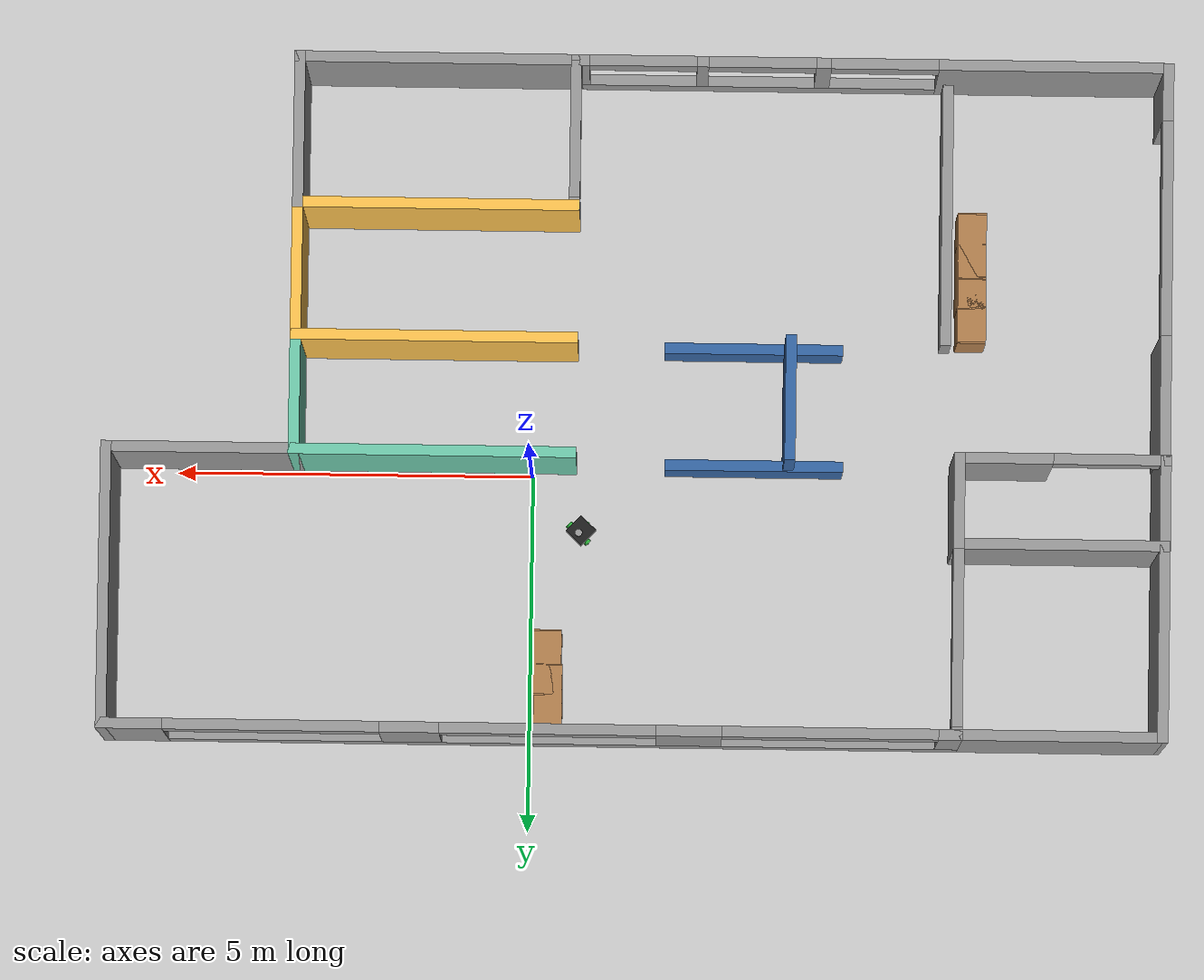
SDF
<sdf version="1.7">
 <world name="default">
  <light name="sun" type="directional">
   <pose>0 0 10 0 -0 0</pose>
   <diffuse>0.8 0.8 0.8 1</diffuse>
   <specular>0.2 0.2 0.2 1</specular>
   <attenuation>
    <range>1000</range>
    <constant>0.9</constant>
    <linear>0.01</linear>
    <quadratic>0.001</quadratic>
   </attenuation>
   <direction>-0.5 0.1 -0.9</direction>
   <spot><inner_angle>0</inner_angle><outer_angle>0</outer_angle><falloff>0</falloff></spot>
  </light>
  <model name="ground_plane">
   <static>1</static>
   <link name="link">
    <collision name="collision">
     <geometry><plane><normal>0 0 1</normal><size>100 100</size></plane></geometry>
     <surface>
      <contact><collide_bitmask>65535</collide_bitmask></contact>
      <friction><ode><mu>100</mu><mu2>50</mu2></ode></friction>
     </surface>
    </collision>
    <visual name="visual">
     <cast_shadows>0</cast_shadows>
     <geometry><plane><normal>0 0 1</normal><size>100 100</size></plane></geometry>
     <material>
      <script><uri>file://media/materials/scripts/gazebo.material</uri><name>Gazebo/Grey</name></script>
     </material>
    </visual>
   </link>
  </model>
  <gravity>0 0 -9.8</gravity>
  <magnetic_field>6e-06 2.3e-05 -4.2e-05</magnetic_field>
  <atmosphere type="adiabatic"/>
  <physics type="ode">
   <max_step_size>0.001</max_step_size>
   <real_time_factor>1</real_time_factor>
   <real_time_update_rate>1000</real_time_update_rate>
  </physics>
  <scene><ambient>0.4 0.4 0.4 1</ambient><background>0.7 0.7 0.7 1</background><shadows>1</shadows></scene>
  <spherical_coordinates>
   <surface_model>EARTH_WGS84</surface_model>
   <latitude_deg>0</latitude_deg>
   <longitude_deg>0</longitude_deg>
   <elevation>0</elevation>
   <heading_deg>0</heading_deg>
  </spherical_coordinates>
  <model name="fablab_view">
   <pose>-1.45693 -0.95337 0 0 -0 0</pose>
   <link name="Wall_11">
    <collision name="Wall_11_Collision">
     <geometry><box><size>1.75 0.15 2.5</size></box></geometry>
     <pose>0 0 1.25 0 -0 0</pose>
    </collision>
    <visual name="Wall_11_Visual">
     <pose>0 0 1.25 0 -0 0</pose>
     <geometry><box><size>1.75 0.15 2.5</size></box></geometry>
     <material>
      <script><uri>file://media/materials/scripts/gazebo.material</uri><name>Gazebo/Grey</name></script>
      <ambient>0.435294 0.796078 0.67451 1</ambient>
     </material>
     <meta><layer>0</layer></meta>
    </visual>
    <pose>4.7545 0.019496 0 0 -0 1.5708</pose>
   </link>
   <link name="Wall_12">
    <collision name="Wall_12_Collision">
     <geometry><box><size>4 0.15 2.5</size></box></geometry>
     <pose>0 0 1.25 0 -0 0</pose>
    </collision>
    <visual name="Wall_12_Visual">
     <pose>0 0 1.25 0 -0 0</pose>
     <geometry><box><size>4 0.15 2.5</size></box></geometry>
     <material>
      <script><uri>file://media/materials/scripts/gazebo.material</uri><name>Gazebo/Grey</name></script>
      <ambient>0.435294 0.796078 0.67451 1</ambient>
     </material>
     <meta><layer>0</layer></meta>
    </visual>
    <pose>2.8295 0.819496 0 0 -0 3.14159</pose>
   </link>
   <link name="Wall_14">
    <collision name="Wall_14_Collision">
     <geometry><box><size>2.75 0.15 2.5</size></box></geometry>
     <pose>0 0 1.25 0 -0 0</pose>
    </collision>
    <visual name="Wall_14_Visual">
     <pose>0 0 1.25 0 -0 0</pose>
     <geometry><box><size>2.75 0.15 2.5</size></box></geometry>
     <material>
      <script><uri>file://media/materials/scripts/gazebo.material</uri><name>Gazebo/Grey</name></script>
      <ambient>1 1 1 1</ambient>
     </material>
     <meta><layer>0</layer></meta>
    </visual>
    <pose>6.0545 0.819496 0 0 -0 0</pose>
   </link>
   <link name="Wall_15">
    <collision name="Wall_15_Collision">
     <geometry><box><size>4 0.15 2.5</size></box></geometry>
     <pose>0 0 1.25 0 -0 0</pose>
    </collision>
    <visual name="Wall_15_Visual">
     <pose>0 0 1.25 0 -0 0</pose>
     <geometry><box><size>4 0.15 2.5</size></box></geometry>
     <material>
      <script><uri>file://media/materials/scripts/gazebo.material</uri><name>Gazebo/Grey</name></script>
      <ambient>1 1 1 1</ambient>
     </material>
     <meta><layer>0</layer></meta>
    </visual>
    <pose>7.3545 2.7445 0 0 -0 1.5708</pose>
   </link>
   <link name="Wall_16">
    <pose>1.4295 4.6695 0 0 -0 3.14159</pose>
    <visual name="Wall_16_Visual_0">
     <pose>-5.53886 0 1.25 0 -0 0</pose>
     <geometry><box><size>0.922275 0.15 2.5</size></box></geometry>
     <material>
      <script><uri>file://media/materials/scripts/gazebo.material</uri><name>Gazebo/Grey</name></script>
      <ambient>1 1 1 1</ambient>
     </material>
     <meta><layer>0</layer></meta>
    </visual>
    <collision name="Wall_16_Collision_0">
     <geometry><box><size>0.922275 0.15 2.5</size></box></geometry>
     <pose>-5.53886 0 1.25 0 -0 0</pose>
    </collision>
    <visual name="Wall_16_Visual_1">
     <pose>0.461138 0 0.25 0 -0 0</pose>
     <geometry><box><size>11.0777 0.15 0.5</size></box></geometry>
     <material>
      <script><uri>file://media/materials/scripts/gazebo.material</uri><name>Gazebo/Grey</name></script>
      <ambient>1 1 1 1</ambient>
     </material>
     <meta><layer>0</layer></meta>
    </visual>
    <collision name="Wall_16_Collision_1">
     <geometry><box><size>11.0777 0.15 0.5</size></box></geometry>
     <pose>0.461138 0 0.25 0 -0 0</pose>
    </collision>
    <visual name="Wall_16_Visual_2">
     <pose>-1.65957 0 1.5 0 -0 0</pose>
     <geometry><box><size>0.836307 0.15 2</size></box></geometry>
     <material>
      <script><uri>file://media/materials/scripts/gazebo.material</uri><name>Gazebo/Grey</name></script>
      <ambient>1 1 1 1</ambient>
     </material>
     <meta><layer>0</layer></meta>
    </visual>
    <collision name="Wall_16_Collision_2">
     <geometry><box><size>0.836307 0.15 2</size></box></geometry>
     <pose>-1.65957 0 1.5 0 -0 0</pose>
    </collision>
    <visual name="Wall_16_Visual_3">
     <pose>2.21629 0 1.5 0 -0 0</pose>
     <geometry><box><size>0.915406 0.15 2</size></box></geometry>
     <material>
      <script><uri>file://media/materials/scripts/gazebo.material</uri><name>Gazebo/Grey</name></script>
      <ambient>1 1 1 1</ambient>
     </material>
     <meta><layer>0</layer></meta>
    </visual>
    <collision name="Wall_16_Collision_3">
     <geometry><box><size>0.915406 0.15 2</size></box></geometry>
     <pose>2.21629 0 1.5 0 -0 0</pose>
    </collision>
    <visual name="Wall_16_Visual_4">
     <pose>5.83699 0 1.5 0 -0 0</pose>
     <geometry><box><size>0.326012 0.15 2</size></box></geometry>
     <material>
      <script><uri>file://media/materials/scripts/gazebo.material</uri><name>Gazebo/Grey</name></script>
      <ambient>1 1 1 1</ambient>
     </material>
     <meta><layer>0</layer></meta>
    </visual>
    <collision name="Wall_16_Collision_4">
     <geometry><box><size>0.326012 0.15 2</size></box></geometry>
     <pose>5.83699 0 1.5 0 -0 0</pose>
    </collision>
    <visual name="Wall_16_Visual_5">
     <pose>-3.57773 0 2.25 0 -0 0</pose>
     <geometry><box><size>3 0.15 0.5</size></box></geometry>
     <material>
      <script><uri>file://media/materials/scripts/gazebo.material</uri><name>Gazebo/Grey</name></script>
      <ambient>1 1 1 1</ambient>
     </material>
     <meta><layer>0</layer></meta>
    </visual>
    <collision name="Wall_16_Collision_5">
     <geometry><box><size>3 0.15 0.5</size></box></geometry>
     <pose>-3.57773 0 2.25 0 -0 0</pose>
    </collision>
    <visual name="Wall_16_Visual_6">
     <pose>0.258582 0 2.25 0 -0 0</pose>
     <geometry><box><size>3 0.15 0.5</size></box></geometry>
     <material>
      <script><uri>file://media/materials/scripts/gazebo.material</uri><name>Gazebo/Grey</name></script>
      <ambient>1 1 1 1</ambient>
     </material>
     <meta><layer>0</layer></meta>
    </visual>
    <collision name="Wall_16_Collision_6">
     <geometry><box><size>3 0.15 0.5</size></box></geometry>
     <pose>0.258582 0 2.25 0 -0 0</pose>
    </collision>
    <visual name="Wall_16_Visual_7">
     <pose>4.17399 0 2.25 0 -0 0</pose>
     <geometry><box><size>3 0.15 0.5</size></box></geometry>
     <material>
      <script><uri>file://media/materials/scripts/gazebo.material</uri><name>Gazebo/Grey</name></script>
      <ambient>1 1 1 1</ambient>
     </material>
     <meta><layer>0</layer></meta>
    </visual>
    <collision name="Wall_16_Collision_7">
     <geometry><box><size>3 0.15 0.5</size></box></geometry>
     <pose>4.17399 0 2.25 0 -0 0</pose>
    </collision>
   </link>
   <link name="Wall_17">
    <pose>-4.4955 2.7445 0 0 -0 -1.5708</pose>
    <visual name="Wall_17_Visual_0">
     <pose>-1.90468 0 1.25 0 -0 0</pose>
     <geometry><box><size>0.190639 0.15 2.5</size></box></geometry>
     <material>
      <script><uri>file://media/materials/scripts/gazebo.material</uri><name>Gazebo/Grey</name></script>
      <ambient>1 1 1 1</ambient>
     </material>
     <meta><layer>0</layer></meta>
    </visual>
    <collision name="Wall_17_Collision_0">
     <geometry><box><size>0.190639 0.15 2.5</size></box></geometry>
     <pose>-1.90468 0 1.25 0 -0 0</pose>
    </collision>
    <visual name="Wall_17_Visual_1">
     <pose>1.33216 0 1.25 0 -0 0</pose>
     <geometry><box><size>1.33569 0.15 2.5</size></box></geometry>
     <material>
      <script><uri>file://media/materials/scripts/gazebo.material</uri><name>Gazebo/Grey</name></script>
      <ambient>1 1 1 1</ambient>
     </material>
     <meta><layer>0</layer></meta>
    </visual>
    <collision name="Wall_17_Collision_1">
     <geometry><box><size>1.33569 0.15 2.5</size></box></geometry>
     <pose>1.33216 0 1.25 0 -0 0</pose>
    </collision>
    <visual name="Wall_17_Visual_2">
     <pose>-0.572525 0 2.25 0 -0 0</pose>
     <geometry><box><size>2.47367 0.15 0.5</size></box></geometry>
     <material>
      <script><uri>file://media/materials/scripts/gazebo.material</uri><name>Gazebo/Grey</name></script>
      <ambient>1 1 1 1</ambient>
     </material>
     <meta><layer>0</layer></meta>
    </visual>
    <collision name="Wall_17_Collision_2">
     <geometry><box><size>2.47367 0.15 0.5</size></box></geometry>
     <pose>-0.572525 0 2.25 0 -0 0</pose>
    </collision>
   </link>
   <link name="Wall_30">
    <pose>-7.34259 -1.98229 0 0 -0 1.5708</pose>
    <visual name="Wall_30_Visual_0">
     <pose>-2.34687 0 1.25 0 -0 0</pose>
     <geometry><box><size>0.80625 0.15 2.5</size></box></geometry>
     <material>
      <script><uri>file://media/materials/scripts/gazebo.material</uri><name>Gazebo/Grey</name></script>
      <ambient>1 1 1 1</ambient>
     </material>
     <meta><layer>0</layer></meta>
    </visual>
    <collision name="Wall_30_Collision_0">
     <geometry><box><size>0.80625 0.15 2.5</size></box></geometry>
     <pose>-2.34687 0 1.25 0 -0 0</pose>
    </collision>
    <visual name="Wall_30_Visual_1">
     <pose>1.90312 0 1.25 0 -0 0</pose>
     <geometry><box><size>1.69375 0.15 2.5</size></box></geometry>
     <material>
      <script><uri>file://media/materials/scripts/gazebo.material</uri><name>Gazebo/Grey</name></script>
      <ambient>1 1 1 1</ambient>
     </material>
     <meta><layer>0</layer></meta>
    </visual>
    <collision name="Wall_30_Collision_1">
     <geometry><box><size>1.69375 0.15 2.5</size></box></geometry>
     <pose>1.90312 0 1.25 0 -0 0</pose>
    </collision>
    <visual name="Wall_30_Visual_2">
     <pose>-0.44375 0 2.25 0 -0 0</pose>
     <geometry><box><size>3 0.15 0.5</size></box></geometry>
     <material>
      <script><uri>file://media/materials/scripts/gazebo.material</uri><name>Gazebo/Grey</name></script>
      <ambient>1 1 1 1</ambient>
     </material>
     <meta><layer>0</layer></meta>
    </visual>
    <collision name="Wall_30_Collision_2">
     <geometry><box><size>3 0.15 0.5</size></box></geometry>
     <pose>-0.44375 0 2.25 0 -0 0</pose>
    </collision>
   </link>
   <link name="Wall_34">
    <pose>-5.93333 0.816291 0 0 -0 3.14159</pose>
    <visual name="Wall_34_Visual_0">
     <pose>-0.816427 0 1.25 0 -0 0</pose>
     <geometry><box><size>1.35715 0.15 2.5</size></box></geometry>
     <material>
      <script><uri>file://media/materials/scripts/gazebo.material</uri><name>Gazebo/Grey</name></script>
      <ambient>1 1 1 1</ambient>
     </material>
     <meta><layer>0</layer></meta>
    </visual>
    <collision name="Wall_34_Collision_0">
     <geometry><box><size>1.35715 0.15 2.5</size></box></geometry>
     <pose>-0.816427 0 1.25 0 -0 0</pose>
    </collision>
    <visual name="Wall_34_Visual_1">
     <pose>1.42857 0 1.25 0 -0 0</pose>
     <geometry><box><size>0.132854 0.15 2.5</size></box></geometry>
     <material>
      <script><uri>file://media/materials/scripts/gazebo.material</uri><name>Gazebo/Grey</name></script>
      <ambient>1 1 1 1</ambient>
     </material>
     <meta><layer>0</layer></meta>
    </visual>
    <collision name="Wall_34_Collision_1">
     <geometry><box><size>0.132854 0.15 2.5</size></box></geometry>
     <pose>1.42857 0 1.25 0 -0 0</pose>
    </collision>
    <visual name="Wall_34_Visual_2">
     <pose>0.612146 0 2.25 0 -0 0</pose>
     <geometry><box><size>1.5 0.15 0.5</size></box></geometry>
     <material>
      <script><uri>file://media/materials/scripts/gazebo.material</uri><name>Gazebo/Grey</name></script>
      <ambient>1 1 1 1</ambient>
     </material>
     <meta><layer>0</layer></meta>
    </visual>
    <collision name="Wall_34_Collision_2">
     <geometry><box><size>1.5 0.15 0.5</size></box></geometry>
     <pose>0.612146 0 2.25 0 -0 0</pose>
    </collision>
   </link>
   <link name="Wall_38">
    <collision name="Wall_38_Collision">
     <geometry><box><size>3.75 0.15 1</size></box></geometry>
     <pose>0 0 0.5 0 -0 0</pose>
    </collision>
    <visual name="Wall_38_Visual">
     <pose>0 0 0.5 0 -0 0</pose>
     <geometry><box><size>3.75 0.15 1</size></box></geometry>
     <material>
      <script><uri>file://media/materials/scripts/gazebo.material</uri><name>Gazebo/Grey</name></script>
      <ambient>1 1 1 1</ambient>
     </material>
     <meta><layer>0</layer></meta>
    </visual>
    <pose>-4.32559 -2.77929 0 0 -0 -1.5708</pose>
   </link>
   <link name="Wall_4">
    <pose>-3.16071 -4.66967 0 0 -0 0</pose>
    <visual name="Wall_4_Visual_0">
     <pose>-2.55675 0 1.25 0 -0 0</pose>
     <geometry><box><size>3.13649 0.15 2.5</size></box></geometry>
     <material>
      <script><uri>file://media/materials/scripts/gazebo.material</uri><name>Gazebo/Grey</name></script>
      <ambient>1 1 1 1</ambient>
     </material>
     <meta><layer>0</layer></meta>
    </visual>
    <collision name="Wall_4_Collision_0">
     <geometry><box><size>3.13649 0.15 2.5</size></box></geometry>
     <pose>-2.55675 0 1.25 0 -0 0</pose>
    </collision>
    <visual name="Wall_4_Visual_1">
     <pose>1.56825 0 0.25 0 -0 0</pose>
     <geometry><box><size>5.11351 0.15 0.5</size></box></geometry>
     <material>
      <script><uri>file://media/materials/scripts/gazebo.material</uri><name>Gazebo/Grey</name></script>
      <ambient>1 1 1 1</ambient>
     </material>
     <meta><layer>0</layer></meta>
    </visual>
    <collision name="Wall_4_Collision_1">
     <geometry><box><size>5.11351 0.15 0.5</size></box></geometry>
     <pose>1.56825 0 0.25 0 -0 0</pose>
    </collision>
    <visual name="Wall_4_Visual_2">
     <pose>0.61675 0 1.5 0 -0 0</pose>
     <geometry><box><size>0.210518 0.15 2</size></box></geometry>
     <material>
      <script><uri>file://media/materials/scripts/gazebo.material</uri><name>Gazebo/Grey</name></script>
      <ambient>1 1 1 1</ambient>
     </material>
     <meta><layer>0</layer></meta>
    </visual>
    <collision name="Wall_4_Collision_2">
     <geometry><box><size>0.210518 0.15 2</size></box></geometry>
     <pose>0.61675 0 1.5 0 -0 0</pose>
    </collision>
    <visual name="Wall_4_Visual_3">
     <pose>2.30255 0 1.5 0 -0 0</pose>
     <geometry><box><size>0.161081 0.15 2</size></box></geometry>
     <material>
      <script><uri>file://media/materials/scripts/gazebo.material</uri><name>Gazebo/Grey</name></script>
      <ambient>1 1 1 1</ambient>
     </material>
     <meta><layer>0</layer></meta>
    </visual>
    <collision name="Wall_4_Collision_3">
     <geometry><box><size>0.161081 0.15 2</size></box></geometry>
     <pose>2.30255 0 1.5 0 -0 0</pose>
    </collision>
    <visual name="Wall_4_Visual_4">
     <pose>4.00404 0 1.5 0 -0 0</pose>
     <geometry><box><size>0.24191 0.15 2</size></box></geometry>
     <material>
      <script><uri>file://media/materials/scripts/gazebo.material</uri><name>Gazebo/Grey</name></script>
      <ambient>1 1 1 1</ambient>
     </material>
     <meta><layer>0</layer></meta>
    </visual>
    <collision name="Wall_4_Collision_4">
     <geometry><box><size>0.24191 0.15 2</size></box></geometry>
     <pose>4.00404 0 1.5 0 -0 0</pose>
    </collision>
    <visual name="Wall_4_Visual_5">
     <pose>-0.238509 0 2.25 0 -0 0</pose>
     <geometry><box><size>1.5 0.15 0.5</size></box></geometry>
     <material>
      <script><uri>file://media/materials/scripts/gazebo.material</uri><name>Gazebo/Grey</name></script>
      <ambient>1 1 1 1</ambient>
     </material>
     <meta><layer>0</layer></meta>
    </visual>
    <collision name="Wall_4_Collision_5">
     <geometry><box><size>1.5 0.15 0.5</size></box></geometry>
     <pose>-0.238509 0 2.25 0 -0 0</pose>
    </collision>
    <visual name="Wall_4_Visual_6">
     <pose>1.47201 0 2.25 0 -0 0</pose>
     <geometry><box><size>1.5 0.15 0.5</size></box></geometry>
     <material>
      <script><uri>file://media/materials/scripts/gazebo.material</uri><name>Gazebo/Grey</name></script>
      <ambient>1 1 1 1</ambient>
     </material>
     <meta><layer>0</layer></meta>
    </visual>
    <collision name="Wall_4_Collision_6">
     <geometry><box><size>1.5 0.15 0.5</size></box></geometry>
     <pose>1.47201 0 2.25 0 -0 0</pose>
    </collision>
    <visual name="Wall_4_Visual_7">
     <pose>3.13309 0 2.25 0 -0 0</pose>
     <geometry><box><size>1.5 0.15 0.5</size></box></geometry>
     <material>
      <script><uri>file://media/materials/scripts/gazebo.material</uri><name>Gazebo/Grey</name></script>
      <ambient>1 1 1 1</ambient>
     </material>
     <meta><layer>0</layer></meta>
    </visual>
    <collision name="Wall_4_Collision_7">
     <geometry><box><size>1.5 0.15 0.5</size></box></geometry>
     <pose>3.13309 0 2.25 0 -0 0</pose>
    </collision>
   </link>
   <link name="Wall_40">
    <collision name="Wall_40_Collision">
     <geometry><box><size>2.5 0.15 1</size></box></geometry>
     <pose>0 0 0.5 0 -0 0</pose>
    </collision>
    <visual name="Wall_40_Visual">
     <pose>0 0 0.5 0 -0 0</pose>
     <geometry><box><size>2.5 0.15 1</size></box></geometry>
     <material>
      <script><uri>file://media/materials/scripts/gazebo.material</uri><name>Gazebo/Grey</name></script>
      <ambient>0.203922 0.396078 0.643137 1</ambient>
     </material>
     <meta><layer>0</layer></meta>
    </visual>
    <pose>-1.63659 -0.814287 0 0 -0 0</pose>
   </link>
   <link name="Wall_42">
    <collision name="Wall_42_Collision">
     <geometry><box><size>3 0.15 2.5</size></box></geometry>
     <pose>0 0 1.25 0 -0 0</pose>
    </collision>
    <visual name="Wall_42_Visual">
     <pose>0 0 1.25 0 -0 0</pose>
     <geometry><box><size>3 0.15 2.5</size></box></geometry>
     <material>
      <script><uri>file://media/materials/scripts/gazebo.material</uri><name>Gazebo/Grey</name></script>
      <ambient>1 1 1 1</ambient>
     </material>
     <meta><layer>0</layer></meta>
    </visual>
    <pose>-5.9205 4.6695 0 0 -0 3.14159</pose>
   </link>
   <link name="Wall_43">
    <collision name="Wall_43_Collision">
     <geometry><box><size>3.9861 0.15 2.5</size></box></geometry>
     <pose>0 0 1.25 0 -0 0</pose>
    </collision>
    <visual name="Wall_43_Visual">
     <pose>0 0 1.25 0 -0 0</pose>
     <geometry><box><size>3.9861 0.15 2.5</size></box></geometry>
     <material>
      <script><uri>file://media/materials/scripts/gazebo.material</uri><name>Gazebo/Grey</name></script>
      <ambient>1 1 1 1</ambient>
     </material>
     <meta><layer>0</layer></meta>
    </visual>
    <pose>-7.34991 2.75145 0 0 -0 -1.5731</pose>
   </link>
   <link name="Wall_45">
    <collision name="Wall_45_Collision">
     <geometry><box><size>3 0.15 2.5</size></box></geometry>
     <pose>0 0 1.25 0 -0 0</pose>
    </collision>
    <visual name="Wall_45_Visual">
     <pose>0 0 1.25 0 -0 0</pose>
     <geometry><box><size>3 0.15 2.5</size></box></geometry>
     <material>
      <script><uri>file://media/materials/scripts/gazebo.material</uri><name>Gazebo/Grey</name></script>
      <ambient>1 1 1 1</ambient>
     </material>
     <meta><layer>0</layer></meta>
    </visual>
    <pose>-5.9241 2.01165 0 0 -0 3.14159</pose>
   </link>
   <link name="Wall_47">
    <collision name="Wall_47_Collision">
     <geometry><box><size>2.5 0.15 1</size></box></geometry>
     <pose>0 0 0.5 0 -0 0</pose>
    </collision>
    <visual name="Wall_47_Visual">
     <pose>0 0 0.5 0 -0 0</pose>
     <geometry><box><size>2.5 0.15 1</size></box></geometry>
     <material>
      <script><uri>file://media/materials/scripts/gazebo.material</uri><name>Gazebo/Grey</name></script>
      <ambient>0.203922 0.396078 0.643137 1</ambient>
     </material>
     <meta><layer>0</layer></meta>
    </visual>
    <pose>-1.65359 0.830713 0 0 -0 3.14159</pose>
   </link>
   <link name="Wall_49">
    <collision name="Wall_49_Collision">
     <geometry><box><size>1.75 0.15 2.5</size></box></geometry>
     <pose>0 0 1.25 0 -0 0</pose>
    </collision>
    <visual name="Wall_49_Visual">
     <pose>0 0 1.25 0 -0 0</pose>
     <geometry><box><size>1.75 0.15 2.5</size></box></geometry>
     <material>
      <script><uri>file://media/materials/scripts/gazebo.material</uri><name>Gazebo/Grey</name></script>
      <ambient>0.203922 0.396078 0.643137 1</ambient>
     </material>
     <meta><layer>0</layer></meta>
    </visual>
    <pose>-2.13815 0.007319 0 0 -0 -1.5708</pose>
   </link>
   <link name="Wall_5">
    <pose>0.9045 -3.65009 0 0 -0 1.5708</pose>
    <visual name="Wall_5_Visual_0">
     <pose>-1.05133 0 1.25 0 -0 0</pose>
     <geometry><box><size>0.086513 0.15 2.5</size></box></geometry>
     <material>
      <script><uri>file://media/materials/scripts/gazebo.material</uri><name>Gazebo/Grey</name></script>
      <ambient>1 1 1 1</ambient>
     </material>
     <meta><layer>0</layer></meta>
    </visual>
    <collision name="Wall_5_Collision_0">
     <geometry><box><size>0.086513 0.15 2.5</size></box></geometry>
     <pose>-1.05133 0 1.25 0 -0 0</pose>
    </collision>
    <visual name="Wall_5_Visual_1">
     <pose>1.00066 0 1.25 0 -0 0</pose>
     <geometry><box><size>0.187847 0.15 2.5</size></box></geometry>
     <material>
      <script><uri>file://media/materials/scripts/gazebo.material</uri><name>Gazebo/Grey</name></script>
      <ambient>1 1 1 1</ambient>
     </material>
     <meta><layer>0</layer></meta>
    </visual>
    <collision name="Wall_5_Collision_1">
     <geometry><box><size>0.187847 0.15 2.5</size></box></geometry>
     <pose>1.00066 0 1.25 0 -0 0</pose>
    </collision>
    <visual name="Wall_5_Visual_2">
     <pose>-0.050667 0 2.25 0 -0 0</pose>
     <geometry><box><size>1.91481 0.15 0.5</size></box></geometry>
     <material>
      <script><uri>file://media/materials/scripts/gazebo.material</uri><name>Gazebo/Grey</name></script>
      <ambient>1 1 1 1</ambient>
     </material>
     <meta><layer>0</layer></meta>
    </visual>
    <collision name="Wall_5_Collision_2">
     <geometry><box><size>1.91481 0.15 0.5</size></box></geometry>
     <pose>-0.050667 0 2.25 0 -0 0</pose>
    </collision>
   </link>
   <link name="Wall_51">
    <collision name="Wall_51_Collision">
     <geometry><box><size>2.189 0.15 2.5</size></box></geometry>
     <pose>0 0 1.25 0 -0 0</pose>
    </collision>
    <visual name="Wall_51_Visual">
     <pose>0 0 1.25 0 -0 0</pose>
     <geometry><box><size>2.189 0.15 2.5</size></box></geometry>
     <material>
      <script><uri>file://media/materials/scripts/gazebo.material</uri><name>Gazebo/Grey</name></script>
      <ambient>1 1 1 1</ambient>
     </material>
     <meta><layer>0</layer></meta>
    </visual>
    <pose>4.7545 -3.65 0 0 -0 -1.5708</pose>
   </link>
   <link name="Wall_52">
    <collision name="Wall_52_Collision">
     <geometry><box><size>4 0.15 2.5</size></box></geometry>
     <pose>0 0 1.25 0 -0 0</pose>
    </collision>
    <visual name="Wall_52_Visual">
     <pose>0 0 1.25 0 -0 0</pose>
     <geometry><box><size>4 0.15 2.5</size></box></geometry>
     <material>
      <script><uri>file://media/materials/scripts/gazebo.material</uri><name>Gazebo/Grey</name></script>
      <ambient>1 1 1 1</ambient>
     </material>
     <meta><layer>0</layer></meta>
    </visual>
    <pose>2.8295 -4.6695 0 0 -0 3.14159</pose>
   </link>
   <link name="Wall_6">
    <collision name="Wall_6_Collision">
     <geometry><box><size>4 0.15 2.5</size></box></geometry>
     <pose>0 0 1.25 0 -0 0</pose>
    </collision>
    <visual name="Wall_6_Visual">
     <pose>0 0 1.25 0 -0 0</pose>
     <geometry><box><size>4 0.15 2.5</size></box></geometry>
     <material>
      <script><uri>file://media/materials/scripts/gazebo.material</uri><name>Gazebo/Grey</name></script>
      <ambient>1 0.764706 0.305882 1</ambient>
     </material>
     <meta><layer>0</layer></meta>
    </visual>
    <pose>2.8295 -2.6305 0 0 -0 0</pose>
   </link>
   <link name="Wall_7">
    <collision name="Wall_7_Collision">
     <geometry><box><size>2 0.15 2.5</size></box></geometry>
     <pose>0 0 1.25 0 -0 0</pose>
    </collision>
    <visual name="Wall_7_Visual">
     <pose>0 0 1.25 0 -0 0</pose>
     <geometry><box><size>2 0.15 2.5</size></box></geometry>
     <material>
      <script><uri>file://media/materials/scripts/gazebo.material</uri><name>Gazebo/Grey</name></script>
      <ambient>1 0.764706 0.305882 1</ambient>
     </material>
     <meta><layer>0</layer></meta>
    </visual>
    <pose>4.7545 -1.7055 0 0 -0 1.5708</pose>
   </link>
   <link name="Wall_8">
    <collision name="Wall_8_Collision">
     <geometry><box><size>4 0.15 2.5</size></box></geometry>
     <pose>0 0 1.25 0 -0 0</pose>
    </collision>
    <visual name="Wall_8_Visual">
     <pose>0 0 1.25 0 -0 0</pose>
     <geometry><box><size>4 0.15 2.5</size></box></geometry>
     <material>
      <script><uri>file://media/materials/scripts/gazebo.material</uri><name>Gazebo/Grey</name></script>
      <ambient>1 0.764706 0.305882 1</ambient>
     </material>
     <meta><layer>0</layer></meta>
    </visual>
    <pose>2.8295 -0.780504 0 0 -0 3.14159</pose>
   </link>
   <static>1</static>
  </model>
  <model name="bookshelf_clone_clone_clone_0">
   <static>1</static>
   <link name="link">
    <inertial><mass>1</mass></inertial>
    <collision name="back">
     <pose>0 0.005 0.6 0 -0 0</pose>
     <geometry><box><size>0.9 0.01 1.2</size></box></geometry>
    </collision>
    <visual name="visual1">
     <pose>0 0.005 0.6 0 -0 0</pose>
     <geometry><box><size>0.9 0.01 1.2</size></box></geometry>
     <material>
      <script><uri>file://media/materials/scripts/gazebo.material</uri><name>Gazebo/Wood</name></script>
     </material>
    </visual>
    <collision name="left_side">
     <pose>0.45 -0.195 0.6 0 -0 0</pose>
     <geometry><box><size>0.02 0.4 1.2</size></box></geometry>
    </collision>
    <visual name="visual2">
     <pose>0.45 -0.195 0.6 0 -0 0</pose>
     <geometry><box><size>0.02 0.4 1.2</size></box></geometry>
     <material>
      <script><uri>file://media/materials/scripts/gazebo.material</uri><name>Gazebo/Wood</name></script>
     </material>
    </visual>
    <collision name="right_side">
     <pose>-0.45 -0.195 0.6 0 -0 0</pose>
     <geometry><box><size>0.02 0.4 1.2</size></box></geometry>
    </collision>
    <visual name="visual3">
     <pose>-0.45 -0.195 0.6 0 -0 0</pose>
     <geometry><box><size>0.02 0.4 1.2</size></box></geometry>
     <material>
      <script><uri>file://media/materials/scripts/gazebo.material</uri><name>Gazebo/Wood</name></script>
     </material>
    </visual>
    <collision name="bottom">
     <pose>0 -0.195 0.03 0 -0 0</pose>
     <geometry><box><size>0.88 0.4 0.06</size></box></geometry>
    </collision>
    <visual name="visual4">
     <pose>0 -0.195 0.03 0 -0 0</pose>
     <geometry><box><size>0.88 0.4 0.06</size></box></geometry>
     <material>
      <script><uri>file://media/materials/scripts/gazebo.material</uri><name>Gazebo/Wood</name></script>
     </material>
    </visual>
    <collision name="top">
     <pose>0 -0.195 1.19 0 -0 0</pose>
     <geometry><box><size>0.88 0.4 0.02</size></box></geometry>
    </collision>
    <visual name="visual5">
     <pose>0 -0.195 1.19 0 -0 0</pose>
     <geometry><box><size>0.88 0.4 0.02</size></box></geometry>
     <material>
      <script><uri>file://media/materials/scripts/gazebo.material</uri><name>Gazebo/Wood</name></script>
     </material>
    </visual>
    <collision name="low_shelf">
     <pose>0 -0.195 0.43 0 -0 0</pose>
     <geometry><box><size>0.88 0.4 0.02</size></box></geometry>
    </collision>
    <visual name="visual6">
     <pose>0 -0.195 0.43 0 -0 0</pose>
     <geometry><box><size>0.88 0.4 0.02</size></box></geometry>
     <material>
      <script><uri>file://media/materials/scripts/gazebo.material</uri><name>Gazebo/Wood</name></script>
     </material>
    </visual>
    <collision name="high_shelf">
     <pose>0 -0.195 0.8 0 -0 0</pose>
     <geometry><box><size>0.88 0.4 0.02</size></box></geometry>
    </collision>
    <visual name="visual7">
     <pose>0 -0.195 0.8 0 -0 0</pose>
     <geometry><box><size>0.88 0.4 0.02</size></box></geometry>
     <material>
      <script><uri>file://media/materials/scripts/gazebo.material</uri><name>Gazebo/Wood</name></script>
     </material>
    </visual>
   </link>
   <pose>-0.072276 3.17218 0 0 0 -1.57319</pose>
  </model>
  <model name="bookshelf_clone_clone_clone_0_clone">
   <static>1</static>
   <link name="link">
    <inertial><mass>1</mass></inertial>
    <collision name="back">
     <pose>0 0.005 0.6 0 -0 0</pose>
     <geometry><box><size>0.9 0.01 1.2</size></box></geometry>
    </collision>
    <visual name="visual1">
     <pose>0 0.005 0.6 0 -0 0</pose>
     <geometry><box><size>0.9 0.01 1.2</size></box></geometry>
     <material>
      <script><uri>file://media/materials/scripts/gazebo.material</uri><name>Gazebo/Wood</name></script>
     </material>
    </visual>
    <collision name="left_side">
     <pose>0.45 -0.195 0.6 0 -0 0</pose>
     <geometry><box><size>0.02 0.4 1.2</size></box></geometry>
    </collision>
    <visual name="visual2">
     <pose>0.45 -0.195 0.6 0 -0 0</pose>
     <geometry><box><size>0.02 0.4 1.2</size></box></geometry>
     <material>
      <script><uri>file://media/materials/scripts/gazebo.material</uri><name>Gazebo/Wood</name></script>
     </material>
    </visual>
    <collision name="right_side">
     <pose>-0.45 -0.195 0.6 0 -0 0</pose>
     <geometry><box><size>0.02 0.4 1.2</size></box></geometry>
    </collision>
    <visual name="visual3">
     <pose>-0.45 -0.195 0.6 0 -0 0</pose>
     <geometry><box><size>0.02 0.4 1.2</size></box></geometry>
     <material>
      <script><uri>file://media/materials/scripts/gazebo.material</uri><name>Gazebo/Wood</name></script>
     </material>
    </visual>
    <collision name="bottom">
     <pose>0 -0.195 0.03 0 -0 0</pose>
     <geometry><box><size>0.88 0.4 0.06</size></box></geometry>
    </collision>
    <visual name="visual4">
     <pose>0 -0.195 0.03 0 -0 0</pose>
     <geometry><box><size>0.88 0.4 0.06</size></box></geometry>
     <material>
      <script><uri>file://media/materials/scripts/gazebo.material</uri><name>Gazebo/Wood</name></script>
     </material>
    </visual>
    <collision name="top">
     <pose>0 -0.195 1.19 0 -0 0</pose>
     <geometry><box><size>0.88 0.4 0.02</size></box></geometry>
    </collision>
    <visual name="visual5">
     <pose>0 -0.195 1.19 0 -0 0</pose>
     <geometry><box><size>0.88 0.4 0.02</size></box></geometry>
     <material>
      <script><uri>file://media/materials/scripts/gazebo.material</uri><name>Gazebo/Wood</name></script>
     </material>
    </visual>
    <collision name="low_shelf">
     <pose>0 -0.195 0.43 0 -0 0</pose>
     <geometry><box><size>0.88 0.4 0.02</size></box></geometry>
    </collision>
    <visual name="visual6">
     <pose>0 -0.195 0.43 0 -0 0</pose>
     <geometry><box><size>0.88 0.4 0.02</size></box></geometry>
     <material>
      <script><uri>file://media/materials/scripts/gazebo.material</uri><name>Gazebo/Wood</name></script>
     </material>
    </visual>
    <collision name="high_shelf">
     <pose>0 -0.195 0.8 0 -0 0</pose>
     <geometry><box><size>0.88 0.4 0.02</size></box></geometry>
    </collision>
    <visual name="visual7">
     <pose>0 -0.195 0.8 0 -0 0</pose>
     <geometry><box><size>0.88 0.4 0.02</size></box></geometry>
     <material>
      <script><uri>file://media/materials/scripts/gazebo.material</uri><name>Gazebo/Wood</name></script>
     </material>
    </visual>
   </link>
   <pose>-5.94449 -2.33427 0 0 0 -1.57319</pose>
  </model>
  <model name="bookshelf_clone_clone_clone_0_clone_1">
   <static>1</static>
   <link name="link">
    <inertial><mass>1</mass></inertial>
    <collision name="back">
     <pose>0 0.005 0.6 0 -0 0</pose>
     <geometry><box><size>0.9 0.01 1.2</size></box></geometry>
    </collision>
    <visual name="visual1">
     <pose>0 0.005 0.6 0 -0 0</pose>
     <geometry><box><size>0.9 0.01 1.2</size></box></geometry>
     <material>
      <script><uri>file://media/materials/scripts/gazebo.material</uri><name>Gazebo/Wood</name></script>
     </material>
    </visual>
    <collision name="left_side">
     <pose>0.45 -0.195 0.6 0 -0 0</pose>
     <geometry><box><size>0.02 0.4 1.2</size></box></geometry>
    </collision>
    <visual name="visual2">
     <pose>0.45 -0.195 0.6 0 -0 0</pose>
     <geometry><box><size>0.02 0.4 1.2</size></box></geometry>
     <material>
      <script><uri>file://media/materials/scripts/gazebo.material</uri><name>Gazebo/Wood</name></script>
     </material>
    </visual>
    <collision name="right_side">
     <pose>-0.45 -0.195 0.6 0 -0 0</pose>
     <geometry><box><size>0.02 0.4 1.2</size></box></geometry>
    </collision>
    <visual name="visual3">
     <pose>-0.45 -0.195 0.6 0 -0 0</pose>
     <geometry><box><size>0.02 0.4 1.2</size></box></geometry>
     <material>
      <script><uri>file://media/materials/scripts/gazebo.material</uri><name>Gazebo/Wood</name></script>
     </material>
    </visual>
    <collision name="bottom">
     <pose>0 -0.195 0.03 0 -0 0</pose>
     <geometry><box><size>0.88 0.4 0.06</size></box></geometry>
    </collision>
    <visual name="visual4">
     <pose>0 -0.195 0.03 0 -0 0</pose>
     <geometry><box><size>0.88 0.4 0.06</size></box></geometry>
     <material>
      <script><uri>file://media/materials/scripts/gazebo.material</uri><name>Gazebo/Wood</name></script>
     </material>
    </visual>
    <collision name="top">
     <pose>0 -0.195 1.19 0 -0 0</pose>
     <geometry><box><size>0.88 0.4 0.02</size></box></geometry>
    </collision>
    <visual name="visual5">
     <pose>0 -0.195 1.19 0 -0 0</pose>
     <geometry><box><size>0.88 0.4 0.02</size></box></geometry>
     <material>
      <script><uri>file://media/materials/scripts/gazebo.material</uri><name>Gazebo/Wood</name></script>
     </material>
    </visual>
    <collision name="low_shelf">
     <pose>0 -0.195 0.43 0 -0 0</pose>
     <geometry><box><size>0.88 0.4 0.02</size></box></geometry>
    </collision>
    <visual name="visual6">
     <pose>0 -0.195 0.43 0 -0 0</pose>
     <geometry><box><size>0.88 0.4 0.02</size></box></geometry>
     <material>
      <script><uri>file://media/materials/scripts/gazebo.material</uri><name>Gazebo/Wood</name></script>
     </material>
    </visual>
    <collision name="high_shelf">
     <pose>0 -0.195 0.8 0 -0 0</pose>
     <geometry><box><size>0.88 0.4 0.02</size></box></geometry>
    </collision>
    <visual name="visual7">
     <pose>0 -0.195 0.8 0 -0 0</pose>
     <geometry><box><size>0.88 0.4 0.02</size></box></geometry>
     <material>
      <script><uri>file://media/materials/scripts/gazebo.material</uri><name>Gazebo/Wood</name></script>
     </material>
    </visual>
   </link>
   <pose>-0.055879 2.69392 0 0 0 -1.57319</pose>
  </model>
  <model name="bookshelf_clone_clone_clone_0_clone_2">
   <static>1</static>
   <link name="link">
    <inertial><mass>1</mass></inertial>
    <collision name="back">
     <pose>0 0.005 0.6 0 -0 0</pose>
     <geometry><box><size>0.9 0.01 1.2</size></box></geometry>
    </collision>
    <visual name="visual1">
     <pose>0 0.005 0.6 0 -0 0</pose>
     <geometry><box><size>0.9 0.01 1.2</size></box></geometry>
     <material>
      <script><uri>file://media/materials/scripts/gazebo.material</uri><name>Gazebo/Wood</name></script>
     </material>
    </visual>
    <collision name="left_side">
     <pose>0.45 -0.195 0.6 0 -0 0</pose>
     <geometry><box><size>0.02 0.4 1.2</size></box></geometry>
    </collision>
    <visual name="visual2">
     <pose>0.45 -0.195 0.6 0 -0 0</pose>
     <geometry><box><size>0.02 0.4 1.2</size></box></geometry>
     <material>
      <script><uri>file://media/materials/scripts/gazebo.material</uri><name>Gazebo/Wood</name></script>
     </material>
    </visual>
    <collision name="right_side">
     <pose>-0.45 -0.195 0.6 0 -0 0</pose>
     <geometry><box><size>0.02 0.4 1.2</size></box></geometry>
    </collision>
    <visual name="visual3">
     <pose>-0.45 -0.195 0.6 0 -0 0</pose>
     <geometry><box><size>0.02 0.4 1.2</size></box></geometry>
     <material>
      <script><uri>file://media/materials/scripts/gazebo.material</uri><name>Gazebo/Wood</name></script>
     </material>
    </visual>
    <collision name="bottom">
     <pose>0 -0.195 0.03 0 -0 0</pose>
     <geometry><box><size>0.88 0.4 0.06</size></box></geometry>
    </collision>
    <visual name="visual4">
     <pose>0 -0.195 0.03 0 -0 0</pose>
     <geometry><box><size>0.88 0.4 0.06</size></box></geometry>
     <material>
      <script><uri>file://media/materials/scripts/gazebo.material</uri><name>Gazebo/Wood</name></script>
     </material>
    </visual>
    <collision name="top">
     <pose>0 -0.195 1.19 0 -0 0</pose>
     <geometry><box><size>0.88 0.4 0.02</size></box></geometry>
    </collision>
    <visual name="visual5">
     <pose>0 -0.195 1.19 0 -0 0</pose>
     <geometry><box><size>0.88 0.4 0.02</size></box></geometry>
     <material>
      <script><uri>file://media/materials/scripts/gazebo.material</uri><name>Gazebo/Wood</name></script>
     </material>
    </visual>
    <collision name="low_shelf">
     <pose>0 -0.195 0.43 0 -0 0</pose>
     <geometry><box><size>0.88 0.4 0.02</size></box></geometry>
    </collision>
    <visual name="visual6">
     <pose>0 -0.195 0.43 0 -0 0</pose>
     <geometry><box><size>0.88 0.4 0.02</size></box></geometry>
     <material>
      <script><uri>file://media/materials/scripts/gazebo.material</uri><name>Gazebo/Wood</name></script>
     </material>
    </visual>
    <collision name="high_shelf">
     <pose>0 -0.195 0.8 0 -0 0</pose>
     <geometry><box><size>0.88 0.4 0.02</size></box></geometry>
    </collision>
    <visual name="visual7">
     <pose>0 -0.195 0.8 0 -0 0</pose>
     <geometry><box><size>0.88 0.4 0.02</size></box></geometry>
     <material>
      <script><uri>file://media/materials/scripts/gazebo.material</uri><name>Gazebo/Wood</name></script>
     </material>
    </visual>
   </link>
   <pose>-5.93672 -2.8162 0 0 0 -1.57319</pose>
  </model>
  <model name="bookshelf_clone_clone_clone_0_clone_3">
   <static>1</static>
   <link name="link">
    <inertial><mass>1</mass></inertial>
    <collision name="back">
     <pose>0 0.005 0.6 0 -0 0</pose>
     <geometry><box><size>0.9 0.01 1.2</size></box></geometry>
    </collision>
    <visual name="visual1">
     <pose>0 0.005 0.6 0 -0 0</pose>
     <geometry><box><size>0.9 0.01 1.2</size></box></geometry>
     <material>
      <script><uri>file://media/materials/scripts/gazebo.material</uri><name>Gazebo/Wood</name></script>
     </material>
    </visual>
    <collision name="left_side">
     <pose>0.45 -0.195 0.6 0 -0 0</pose>
     <geometry><box><size>0.02 0.4 1.2</size></box></geometry>
    </collision>
    <visual name="visual2">
     <pose>0.45 -0.195 0.6 0 -0 0</pose>
     <geometry><box><size>0.02 0.4 1.2</size></box></geometry>
     <material>
      <script><uri>file://media/materials/scripts/gazebo.material</uri><name>Gazebo/Wood</name></script>
     </material>
    </visual>
    <collision name="right_side">
     <pose>-0.45 -0.195 0.6 0 -0 0</pose>
     <geometry><box><size>0.02 0.4 1.2</size></box></geometry>
    </collision>
    <visual name="visual3">
     <pose>-0.45 -0.195 0.6 0 -0 0</pose>
     <geometry><box><size>0.02 0.4 1.2</size></box></geometry>
     <material>
      <script><uri>file://media/materials/scripts/gazebo.material</uri><name>Gazebo/Wood</name></script>
     </material>
    </visual>
    <collision name="bottom">
     <pose>0 -0.195 0.03 0 -0 0</pose>
     <geometry><box><size>0.88 0.4 0.06</size></box></geometry>
    </collision>
    <visual name="visual4">
     <pose>0 -0.195 0.03 0 -0 0</pose>
     <geometry><box><size>0.88 0.4 0.06</size></box></geometry>
     <material>
      <script><uri>file://media/materials/scripts/gazebo.material</uri><name>Gazebo/Wood</name></script>
     </material>
    </visual>
    <collision name="top">
     <pose>0 -0.195 1.19 0 -0 0</pose>
     <geometry><box><size>0.88 0.4 0.02</size></box></geometry>
    </collision>
    <visual name="visual5">
     <pose>0 -0.195 1.19 0 -0 0</pose>
     <geometry><box><size>0.88 0.4 0.02</size></box></geometry>
     <material>
      <script><uri>file://media/materials/scripts/gazebo.material</uri><name>Gazebo/Wood</name></script>
     </material>
    </visual>
    <collision name="low_shelf">
     <pose>0 -0.195 0.43 0 -0 0</pose>
     <geometry><box><size>0.88 0.4 0.02</size></box></geometry>
    </collision>
    <visual name="visual6">
     <pose>0 -0.195 0.43 0 -0 0</pose>
     <geometry><box><size>0.88 0.4 0.02</size></box></geometry>
     <material>
      <script><uri>file://media/materials/scripts/gazebo.material</uri><name>Gazebo/Wood</name></script>
     </material>
    </visual>
    <collision name="high_shelf">
     <pose>0 -0.195 0.8 0 -0 0</pose>
     <geometry><box><size>0.88 0.4 0.02</size></box></geometry>
    </collision>
    <visual name="visual7">
     <pose>0 -0.195 0.8 0 -0 0</pose>
     <geometry><box><size>0.88 0.4 0.02</size></box></geometry>
     <material>
      <script><uri>file://media/materials/scripts/gazebo.material</uri><name>Gazebo/Wood</name></script>
     </material>
    </visual>
   </link>
   <pose>-5.93892 -3.25401 0 0 0 -1.57319</pose>
  </model>
  <model name="my_bot">
   <link name="base_link">
    <inertial>
     <pose>0.055714 0 0.078571 0 -0 0</pose>
     <mass>0.7</mass>
     <inertia>
      <ixx>0.0064169</ixx>
      <ixy>0</ixy>
      <ixz>0.00118929</ixz>
      <iyy>0.00745405</iyy>
      <iyz>0</iyz>
      <izz>0.00876214</izz>
     </inertia>
    </inertial>
    <collision name="base_link_fixed_joint_lump__chassis_collision">
     <pose>0.05 0 0.075 0 -0 0</pose>
     <geometry><box><size>0.3 0.3 0.15</size></box></geometry>
    </collision>
    <collision name="base_link_fixed_joint_lump__caster_wheel_collision_1">
     <pose>0.14 0 0 0 -0 0</pose>
     <geometry><sphere><radius>0.05</radius></sphere></geometry>
     <surface><friction><ode><mu>0.001</mu><mu2>0.001</mu2></ode></friction></surface>
    </collision>
    <collision name="base_link_fixed_joint_lump__laser_frame_collision_2">
     <pose>0 0 0.175 0 -0 0</pose>
     <geometry><cylinder><length>0.04</length><radius>0.05</radius></cylinder></geometry>
    </collision>
    <visual name="base_link_fixed_joint_lump__chassis_visual">
     <pose>0.05 0 0.075 0 -0 0</pose>
     <geometry><box><size>0.3 0.3 0.15</size></box></geometry>
     <material>
      <script><name>Gazebo/Black</name><uri>file://media/materials/scripts/gazebo.material</uri></script>
     </material>
    </visual>
    <visual name="base_link_fixed_joint_lump__camera_link_visual_1">
     <pose>0.205 0 0.08 0 -0 0</pose>
     <geometry><box><size>0.01 0.03 0.03</size></box></geometry>
     <material>
      <script><name>Gazebo/Green</name><uri>file://media/materials/scripts/gazebo.material</uri></script>
     </material>
    </visual>
    <visual name="base_link_fixed_joint_lump__caster_wheel_visual_2">
     <pose>0.14 0 0 0 -0 0</pose>
     <geometry><sphere><radius>0.05</radius></sphere></geometry>
     <material>
      <script><name>Gazebo/White</name><uri>file://media/materials/scripts/gazebo.material</uri></script>
     </material>
    </visual>
    <visual name="base_link_fixed_joint_lump__laser_frame_visual_3">
     <pose>0 0 0.175 0 -0 0</pose>
     <geometry><cylinder><length>0.04</length><radius>0.05</radius></cylinder></geometry>
     <material>
      <script><name>Gazebo/Gray</name><uri>file://media/materials/scripts/gazebo.material</uri></script>
     </material>
    </visual>
    <sensor name="camera" type="depth">
     <visualize>1</visualize>
     <update_rate>10</update_rate>
     <camera>
      <horizontal_fov>1.089</horizontal_fov>
      <image><format>B8R8G8</format><width>640</width><height>480</height></image>
      <clip><near>0.05</near><far>8</far></clip>
     </camera>
     <plugin name="camera_controller" filename="libgazebo_ros_camera.so">
      <frame_name>camera_link_optical</frame_name>
      <min_depth>0.1</min_depth>
      <max_depth>100</max_depth>
     </plugin>
     <pose>0.205 0 0.08 0 -0 0</pose>
    </sensor>
    <sensor name="laser" type="ray">
     <visualize>0</visualize>
     <update_rate>10</update_rate>
     <ray>
      <scan>
       <horizontal>
        <samples>360</samples>
        <min_angle>-3.14</min_angle>
        <max_angle>3.14</max_angle>
        <resolution>1</resolution>
       </horizontal>
       <vertical><samples>1</samples><min_angle>0</min_angle><max_angle>0</max_angle></vertical>
      </scan>
      <range><min>0.3</min><max>12</max></range>
     </ray>
     <plugin name="laser_controller" filename="libgazebo_ros_ray_sensor.so">
      <ros><argument>~/out:=scan</argument></ros>
      <output_type>sensor_msgs/LaserScan</output_type>
      <frame_name>laser_frame</frame_name>
     </plugin>
     <pose>0 0 0.175 0 -0 0</pose>
    </sensor>
   </link>
   <joint name="left_wheel_joint" type="revolute">
    <pose relative_to="base_link">0 0.175 0 -1.5708 0 0</pose>
    <parent>base_link</parent>
    <child>left_wheel</child>
    <axis>
     <xyz>0 0 1</xyz>
     <limit><lower>-1e+16</lower><upper>1e+16</upper></limit>
     <dynamics><spring_reference>0</spring_reference><spring_stiffness>0</spring_stiffness></dynamics>
    </axis>
   </joint>
   <link name="left_wheel">
    <pose relative_to="left_wheel_joint">0 0 0 0 -0 0</pose>
    <inertial>
     <mass>0.1</mass>
     <inertia>
      <ixx>7.58333e-05</ixx>
      <ixy>0</ixy>
      <ixz>0</ixz>
      <iyy>7.58333e-05</iyy>
      <iyz>0</iyz>
      <izz>0.000125</izz>
     </inertia>
    </inertial>
    <collision name="left_wheel_collision">
     <geometry><cylinder><length>0.04</length><radius>0.05</radius></cylinder></geometry>
    </collision>
    <visual name="left_wheel_visual">
     <geometry><cylinder><length>0.04</length><radius>0.05</radius></cylinder></geometry>
     <material>
      <script><name>Gazebo/Green</name><uri>file://media/materials/scripts/gazebo.material</uri></script>
     </material>
    </visual>
   </link>
   <joint name="right_wheel_joint" type="revolute">
    <pose relative_to="base_link">0 -0.175 0 1.5708 -0 0</pose>
    <parent>base_link</parent>
    <child>right_wheel</child>
    <axis>
     <xyz>0 0 -1</xyz>
     <limit><lower>-1e+16</lower><upper>1e+16</upper></limit>
     <dynamics><spring_reference>0</spring_reference><spring_stiffness>0</spring_stiffness></dynamics>
    </axis>
   </joint>
   <link name="right_wheel">
    <pose relative_to="right_wheel_joint">0 0 0 0 -0 0</pose>
    <inertial>
     <mass>0.1</mass>
     <inertia>
      <ixx>7.58333e-05</ixx>
      <ixy>0</ixy>
      <ixz>0</ixz>
      <iyy>7.58333e-05</iyy>
      <iyz>0</iyz>
      <izz>0.000125</izz>
     </inertia>
    </inertial>
    <collision name="right_wheel_collision">
     <geometry><cylinder><length>0.04</length><radius>0.05</radius></cylinder></geometry>
    </collision>
    <visual name="right_wheel_visual">
     <geometry><cylinder><length>0.04</length><radius>0.05</radius></cylinder></geometry>
     <material>
      <script><name>Gazebo/Green</name><uri>file://media/materials/scripts/gazebo.material</uri></script>
     </material>
    </visual>
   </link>
   <static>0</static>
   <plugin name="diff_drive" filename="libgazebo_ros_diff_drive.so">
    <left_joint>left_wheel_joint</left_joint>
    <right_joint>right_wheel_joint</right_joint>
    <wheel_separation>0.35</wheel_separation>
    <wheel_diameter>0.1</wheel_diameter>
    <max_wheel_torque>200</max_wheel_torque>
    <max_wheel_acceleration>10.0</max_wheel_acceleration>
    <odometry_frame>odom</odometry_frame>
    <robot_base_frame>base_link</robot_base_frame>
    <publish_odom>1</publish_odom>
    <publish_odom_tf>1</publish_odom_tf>
    <publish_wheel_tf>1</publish_wheel_tf>
   </plugin>
   <pose>-0.663405 0.784773 0.049998 1.9e-05 -1.6e-05 -2.32958</pose>
  </model>
 </world>
</sdf>
